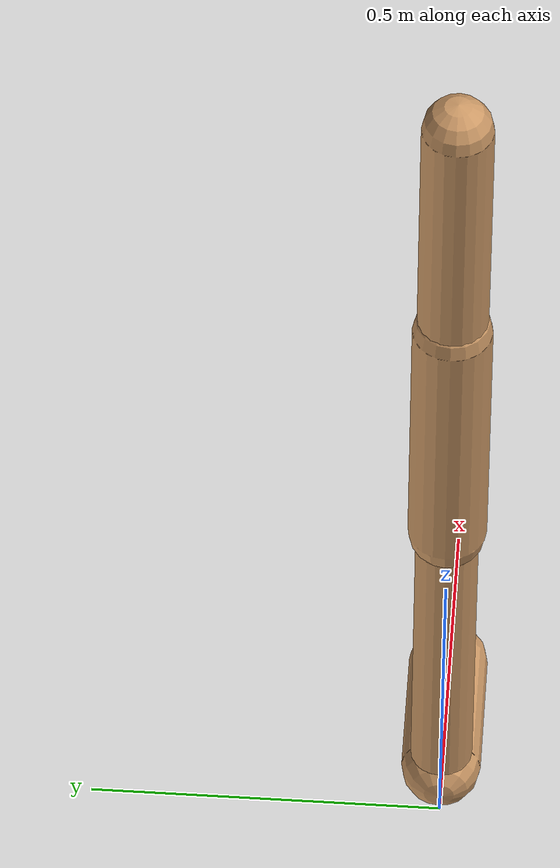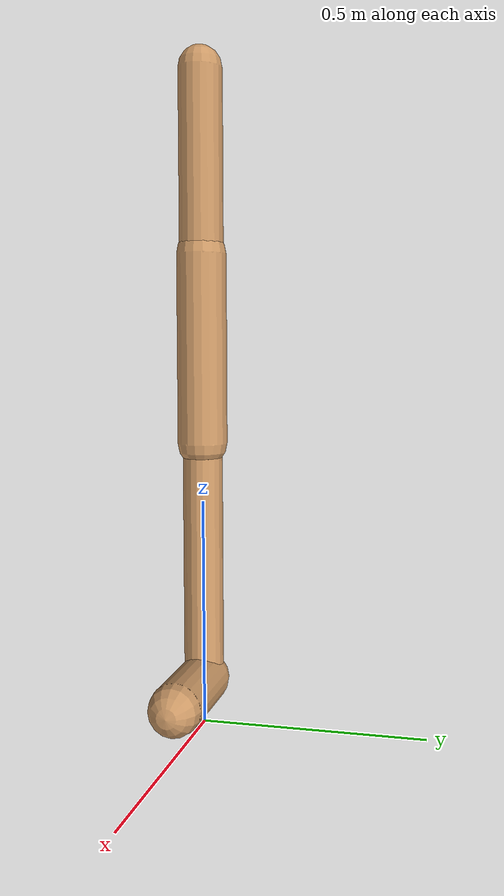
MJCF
<mujoco model="walker2d">
  <compiler angle="degree" coordinate="global" inertiafromgeom="true" />
  <default>
    <joint armature="0.01" damping=".1" limited="true" />
    <geom conaffinity="0" condim="3" contype="1" density="1000" friction="0.8 .1 .1" rgba="0.8 0.6 .4 1" />
  </default>
  <option integrator="RK4" timestep="0.002" />
  <worldbody>

    <body name="torso" pos="0 0 -0.06611512008471088">
      <joint armature="0" axis="1 0 0" damping="0" limited="false" name="ignorex" pos="0 0 0" stiffness="0" type="slide" />
      <joint armature="0" axis="0 0 1" damping="0" limited="false" name="ignorez" pos="0 0 0" ref="1.25" stiffness="0" type="slide" />
      <joint armature="0" axis="0 1 0" damping="0" limited="false" name="ignorey" pos="0 0 0" stiffness="0" type="hinge" />
      <geom fromto="0 0 1.45 0 0 1.05" name="torso_geom" size="0.048291687352617255" type="capsule" />
      <body name="thigh">
        <joint axis="0 -1 0" name="thigh_joint" pos="0 0 1.05" range="-150 0" type="hinge" />
        <geom fromto="0.0 0.0 1.05 0.0 0.0 0.6313176884611789" name="thigh_geom" size="0.05454618501000039" type="capsule" />
        <body name="leg" pos="0.0 0.0 0.03131768846117888">
          <joint axis="0 -1 0" name="leg_joint" pos="0 0 0.6" range="-150 0" type="hinge" />
          <geom fromto="0.0 0.0 0.6 0.0 0.0 0.13479743162353203" name="leg_geom" size="0.04363694800800032" type="capsule" />
          <body name="foot" pos="0.0 0.0 0.03479743162353202">
            <joint axis="0 -1 0" name="foot_joint" pos="0 0 0.1" range="-45 45" type="hinge" />
            <geom fromto="0.0 0.0 0.1 0.1920740453983184 0.0 0.1" name="foot_geom" size="0.05622797300963704" type="capsule" />
          </body>
        </body>
      </body>

      <body name="thigh_left">
        <joint axis="0 -1 0" name="thigh_left_joint" pos="0 0 1.05" range="-150 0" type="hinge" />
        <geom fromto="0.0 0.0 1.05 0.0 0.0 0.6313176884611789" name="thigh_left_geom" rgba=".7 .3 .6 1" size="0.05454618501000039" type="capsule" />
        <body name="leg_left" pos="0.0 0.0 0.03131768846117888">
          <joint axis="0 -1 0" name="leg_left_joint" pos="0 0 0.6" range="-150 0" type="hinge" />
          <geom fromto="0.0 0.0 0.6 0.0 0.0 0.13479743162353203" name="leg_left_geom" rgba=".7 .3 .6 1" size="0.04363694800800032" type="capsule" />
          <body name="foot_left" pos="0.0 0.0 0.03479743162353202">
            <joint axis="0 -1 0" name="foot_left_joint" pos="0 0 0.1" range="-45 45" type="hinge" />
            <geom fromto="0.0 0.0 0.1 0.1920740453983184 0.0 0.1" name="foot_left_geom" rgba=".7 .3 .6 1" size="0.05622797300963704" type="capsule" />
          </body>
        </body>
      </body>
    </body>
  </worldbody>
  <actuator>

    <motor ctrllimited="true" ctrlrange="-1.0 1.0" gear="100" joint="thigh_joint" />
    <motor ctrllimited="true" ctrlrange="-1.0 1.0" gear="100" joint="leg_joint" />
    <motor ctrllimited="true" ctrlrange="-1.0 1.0" gear="100" joint="foot_joint" />
    <motor ctrllimited="true" ctrlrange="-1.0 1.0" gear="100" joint="thigh_left_joint" />
    <motor ctrllimited="true" ctrlrange="-1.0 1.0" gear="100" joint="leg_left_joint" />
    <motor ctrllimited="true" ctrlrange="-1.0 1.0" gear="100" joint="foot_left_joint" />

  </actuator>
</mujoco>
